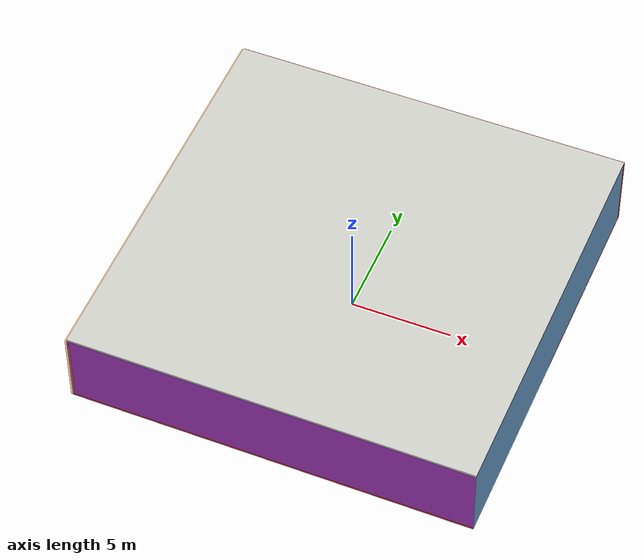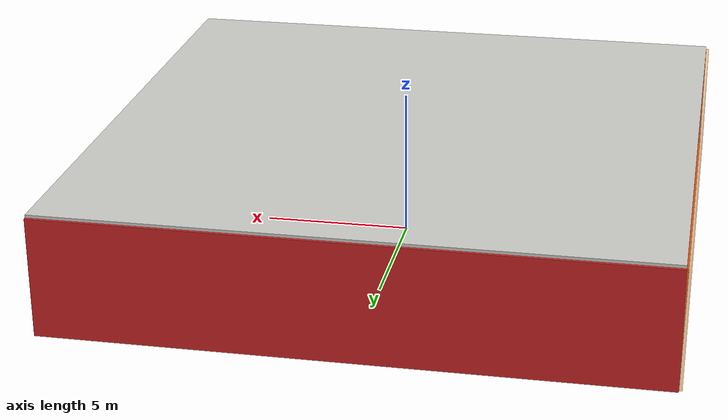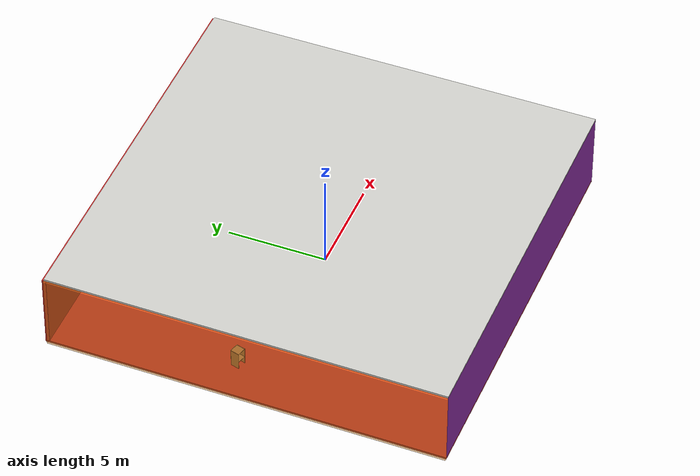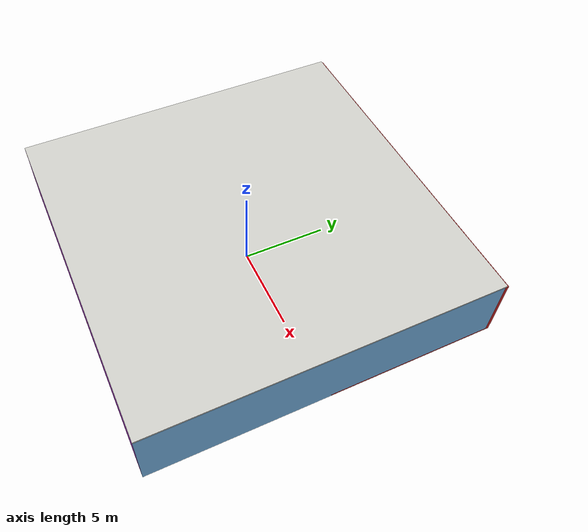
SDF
<sdf version="1.4">
 <world name="default">
  <physics type="ode">
   <max_step_size>0.001</max_step_size>
   <real_time_factor>1</real_time_factor>
   <real_time_update_rate>1000</real_time_update_rate>
   <gravity>0 0 -9.8</gravity>
  </physics>
  <scene><ambient>0.4 0.4 0.4 1</ambient><background>0.7 0.7 0.7 1</background><shadows>1</shadows></scene>
  <model name="Surrounding">
   <static>1</static>
   <link name="Ceiling">
    <collision name="Ceiling_Collision"><geometry><box><size>20 20 0.1</size></box></geometry></collision>
    <visual name="Ceiling_Visual">
     <geometry><box><size>20 20 0.1</size></box></geometry>
     <material>
      <script><uri>file://media/materials/scripts/gazebo.material</uri><name>Gazebo/CeilingTiled</name></script>
     </material>
    </visual>
    <pose>0 0 4.05 0 0 0</pose>
   </link>
   <link name="Wall_South">
    <collision name="Wall_South_Collision">
     <geometry><box><size>20 0 4</size></box></geometry>
     <pose>0 0 2 0 -0 0</pose>
    </collision>
    <visual name="Wall_South_Visual">
     <pose>0 0 2 0 -0 0</pose>
     <geometry><box><size>20 0 4</size></box></geometry>
     <material>
      <script><uri>file://media/materials/scripts/gazebo.material</uri><name>Gazebo/PurpleGlow</name></script>
     </material>
    </visual>
    <velocity_decay><linear>0</linear><angular>0</angular></velocity_decay>
    <pose>0 -10 0 0 -0 0</pose>
   </link>
   <link name="Wall_East">
    <collision name="Wall_21_Collision">
     <geometry><box><size>20 0 4</size></box></geometry>
     <pose>0 0 2 0 -0 0</pose>
    </collision>
    <visual name="Wall_21_Visual">
     <pose>0 0 2 0 -0 0</pose>
     <geometry><box><size>20 0 4</size></box></geometry>
     <material>
      <script><uri>file://media/materials/scripts/gazebo.material</uri><name>Gazebo/SkyBlue</name></script>
     </material>
    </visual>
    <velocity_decay><linear>0</linear><angular>0</angular></velocity_decay>
    <pose>10 0 0 0 -0 1.5708</pose>
   </link>
   <link name="Wall_North">
    <collision name="Wall_22_Collision">
     <geometry><box><size>20 0.2 4</size></box></geometry>
     <pose>0 0 2 0 -0 0</pose>
    </collision>
    <visual name="Wall_22_Visual">
     <pose>0 0 2 0 -0 0</pose>
     <geometry><box><size>20 0.2 4</size></box></geometry>
     <material>
      <script><uri>file://media/materials/scripts/gazebo.material</uri><name>Gazebo/RedBright</name></script>
     </material>
    </visual>
    <velocity_decay><linear>0</linear><angular>0</angular></velocity_decay>
    <pose>0 10 0 0 -0 0</pose>
   </link>
   <link name="Wall_West">
    <collision name="Wall_23_Collision">
     <geometry><box><size>20 0.2 4</size></box></geometry>
     <pose>0 0 2 0 -0 0</pose>
    </collision>
    <visual name="Wall_23_Visual">
     <pose>0 0 2 0 -0 0</pose>
     <geometry><box><size>20 0.2 4</size></box></geometry>
     <material>
      <script>
       <uri>file://media/materials/scripts/gazebo.material</uri>
       <name>Gazebo/OrangeTransparent</name>
      </script>
     </material>
    </visual>
    <velocity_decay><linear>0</linear><angular>0</angular></velocity_decay>
    <pose>-10 0 0 0 0 -1.5708</pose>
   </link>
   <link name="Ground_link">
    <collision name="collision">
     <pose>0 0 .05 0 -0 0</pose>
     <geometry><box><size>20 20 0.1</size></box></geometry>
    </collision>
    <visual name="visual">
     <pose>0 0 .05 0 -0 0</pose>
     <geometry><box><size>20 20 0.1</size></box></geometry>
     <material>
      <script><uri>file://media/materials/scripts/gazebo.material</uri><name>Gazebo/Red</name></script>
     </material>
    </visual>
   </link>
   <static>1</static>
  </model>
  <spherical_coordinates>
   <surface_model>EARTH_WGS84</surface_model>
   <latitude_deg>0</latitude_deg>
   <longitude_deg>0</longitude_deg>
   <elevation>0</elevation>
   <heading_deg>0</heading_deg>
  </spherical_coordinates>
  <light name="lightball_0" type="diffuse">
   <diffuse>0.8 0.8 0.8 1</diffuse>
   <specular>0.2 0.2 0.2 1</specular>
   <attenuation>
    <range>100</range>
    <constant>0.7</constant>
    <linear>0.01</linear>
    <quadratic>0.001</quadratic>
   </attenuation>
   <direction>-0.5 0.1 -0.9</direction>
   <pose>-6.70327141268 -5.51973914583 0.8684646295 0 0 0</pose>
  </light>
  <light name="lightball_1" type="diffuse">
   <diffuse>0.8 0.8 0.8 1</diffuse>
   <specular>0.2 0.2 0.2 1</specular>
   <attenuation>
    <range>100</range>
    <constant>0.7</constant>
    <linear>0.01</linear>
    <quadratic>0.001</quadratic>
   </attenuation>
   <direction>-0.5 0.1 -0.9</direction>
   <pose>-9.28149682405 1.00420799626 1.5785928847 0 0 0</pose>
  </light>
  <light name="lightball_2" type="diffuse">
   <diffuse>0.8 0.8 0.8 1</diffuse>
   <specular>0.2 0.2 0.2 1</specular>
   <attenuation>
    <range>100</range>
    <constant>0.7</constant>
    <linear>0.01</linear>
    <quadratic>0.001</quadratic>
   </attenuation>
   <direction>-0.5 0.1 -0.9</direction>
   <pose>5.2070341336 2.28105847818 1.40290405576 0 0 0</pose>
  </light>
  <light name="lightball_3" type="diffuse">
   <diffuse>0.8 0.8 0.8 1</diffuse>
   <specular>0.2 0.2 0.2 1</specular>
   <attenuation>
    <range>100</range>
    <constant>0.7</constant>
    <linear>0.01</linear>
    <quadratic>0.001</quadratic>
   </attenuation>
   <direction>-0.5 0.1 -0.9</direction>
   <pose>7.13137651703 -1.43648898995 3.82737902112 0 0 0</pose>
  </light>
  <include><uri>model://cabinet</uri><pose>-8.05172731138 1.12827717516 0 0 0 1.30716044546</pose></include>
  <include>
   <uri>model://construction_cone</uri>
   <pose>-4.71994539567 -6.71079011911 0 0 0 1.90900061466</pose>
  </include>
  <include>
   <uri>model://robocup_3Dsim_goal</uri>
   <pose>-4.12026048207 5.05714247319 0 0 0 0.73053564938</pose>
  </include>
  <include><uri>model://cabinet</uri><pose>-0.733692890076 -8.02710248497 0 0 0 2.46808528159</pose></include>
  <include><uri>model://table</uri><pose>-1.52424811838 -5.25159204673 0 0 0 0.724164743531</pose></include>
  <include><uri>model://cabinet</uri><pose>-1.30893890838 1.22527888162 0 0 0 1.40215407832</pose></include>
  <include><uri>model://cabinet</uri><pose>-1.43567109513 4.99364578941 0 0 0 0.564393352259</pose></include>
  <include><uri>model://cabinet</uri><pose>4.01839927616 -1.13587547446 0 0 0 1.62248125162</pose></include>
  <include>
   <uri>model://textured_shapes</uri>
   <pose>7.16594527906 1.75514951118 0 0 0 0.880611962189</pose>
  </include>
 </world>
</sdf>

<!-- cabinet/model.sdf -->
<sdf version="1.5">
  <model name="cabinet">
    <static>true</static>
    <link name="cabinet_bottom_plate">
      <inertial>
        <pose>0 0 -1 0 0 0</pose>
        <inertia>
          <ixx>2.050000</ixx>
          <ixy>0</ixy>
          <ixz>0</ixz>
          <iyy>2.050000</iyy>
          <iyz>0</iyz>
          <izz>2.050000</izz>
        </inertia>
        <mass>25.000000</mass>
      </inertial>
      <collision name="cabinet_bottom_plate_geom">
        <pose>0 0 0.010000 0 0 0</pose>
        <geometry>
          <box>
            <size>0.450000 0.450000 0.020000</size>
          </box>
        </geometry>
      </collision>
      <visual name="cabinet_bottom_plate_geom_visual">
        <pose>0 0 0.010000 0 0 0</pose>
        <geometry>
          <box>
            <size>0.450000 0.450000 0.020000</size>
          </box>
        </geometry>
        <material>
          <script>
            <uri>model://media/materials/scripts/gazebo.material</uri>
            <name>Gazebo/Wood</name>
          </script>
        </material>
      </visual>
      <collision name="cabinet_bottom_plate_geom_cabinet_back_plate">
        <pose>0.235000 0 0.510000 0 0 0</pose>
        <geometry>
          <box>
            <size>0.020000 0.450000 1.020000</size>
          </box>
        </geometry>
      </collision>
      <visual name="cabinet_bottom_plate_geom_cabinet_back_plate_visual">
        <pose>0.235000 0 0.510000 0 0 0</pose>
        <geometry>
          <box>
            <size>0.020000 0.450000 1.020000</size>
          </box>
        </geometry>
        <material>
          <script>
            <uri>model://media/materials/scripts/gazebo.material</uri>
            <name>Gazebo/Wood</name>
          </script>
        </material>
      </visual>
      <collision name="cabinet_bottom_plate_geom_cabinet_left_plate">
        <pose>0 0.235000 0.510000 0 0 0</pose>
        <geometry>
          <box>
            <size>0.450000 0.020000 1.020000</size>
          </box>
        </geometry>
      </collision>
      <visual name="cabinet_bottom_plate_geom_cabinet_left_plate_visual">
        <pose>0 0.235000 0.510000 0 0 0</pose>
        <geometry>
          <box>
            <size>0.450000 0.020000 1.020000</size>
          </box>
        </geometry>
        <material>
          <script>
            <uri>model://media/materials/scripts/gazebo.material</uri>
            <name>Gazebo/Wood</name>
          </script>
        </material>
      </visual>
      <collision name="cabinet_bottom_plate_geom_cabinet_middle_plate">
        <pose>0 0 0.510000 0 0 0</pose>
        <geometry>
          <box>
            <size>0.450000 0.450000 0.020000</size>
          </box>
        </geometry>
      </collision>
      <visual name="cabinet_bottom_plate_geom_cabinet_middle_plate_visual">
        <pose>0 0 0.510000 0 0 0</pose>
        <geometry>
          <box>
            <size>0.450000 0.450000 0.020000</size>
          </box>
        </geometry>
        <material>
          <script>
            <uri>model://media/materials/scripts/gazebo.material</uri>
            <name>Gazebo/Wood</name>
          </script>
        </material>
      </visual>
      <collision name="cabinet_bottom_plate_geom_cabinet_right_plate">
        <pose>0 -0.235000 0.510000 0 0 0</pose>
        <geometry>
          <box>
            <size>0.450000 0.020000 1.020000</size>
          </box>
        </geometry>
      </collision>
      <visual name="cabinet_bottom_plate_geom_cabinet_right_plate_visual">
        <pose>0 -0.235000 0.510000 0 0 0</pose>
        <geometry>
          <box>
            <size>0.450000 0.020000 1.020000</size>
          </box>
        </geometry>
        <material>
          <script>
            <uri>model://media/materials/scripts/gazebo.material</uri>
            <name>Gazebo/Wood</name>
          </script>
        </material>
      </visual>
      <collision name="cabinet_bottom_plate_geom_cabinet_top_plate">
        <pose>0 0 1.010000 0 0 0</pose>
        <geometry>
          <box>
            <size>0.450000 0.450000 0.020000</size>
          </box>
        </geometry>
      </collision>
      <visual name="cabinet_bottom_plate_geom_cabinet_top_plate_visual">
        <pose>0 0 1.010000 0 0 0</pose>
        <geometry>
          <box>
            <size>0.450000 0.450000 0.020000</size>
          </box>
        </geometry>
        <material>
          <script>
            <uri>model://media/materials/scripts/gazebo.material</uri>
            <name>Gazebo/Wood</name>
          </script>
        </material>
      </visual>
    </link>
  </model>
</sdf>

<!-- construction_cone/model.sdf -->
<sdf version="1.5">
  <model name="Construction Cone">
    <link name="link">
      <collision name="collision">
        <geometry>
          <mesh>
            <scale>10 10 10</scale>
            <uri>file://isr-testbed/construction_cone/meshes/construction_cone.dae</uri>
          </mesh>
        </geometry>
      </collision>
      <visual name="visual">
        <geometry>
          <mesh>
            <scale>10 10 10</scale>
            <uri>file://isr-testbed/construction_cone/meshes/construction_cone.dae</uri>
          </mesh>
        </geometry>
      </visual>
    </link>
  </model>
</sdf>

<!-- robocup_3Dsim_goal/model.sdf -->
<sdf version="1.5">
  <model name="robocup_3d_goal">
    <static>true</static>
    <link name="left_post">
      <pose>0 1.05 0.45 0 0 0</pose>
      <collision name="collision">
        <geometry>
          <cylinder>
            <radius>0.05</radius>
            <length>0.9</length>
          </cylinder>
        </geometry>
      </collision>
      <visual name="visual">
        <geometry>
          <cylinder>
            <radius>0.05</radius>
            <length>0.9</length>
          </cylinder>
        </geometry>
        <material>
          <script>
            <uri>file://media/materials/scripts/gazebo.material</uri>
            <name>Gazebo/ZincYellow</name>
          </script>
        </material>
      </visual>
    </link>
    <link name="left_support_horiz_lower">
      <pose>0.30 1.05 0.01 0 0 0</pose>
      <collision name="collision">
        <geometry>
          <box>
            <size>0.50 0.02 0.02</size>
          </box>
        </geometry>
      </collision>
      <visual name="visual">
        <geometry>
          <box>
            <size>0.50 0.02 0.02</size>
          </box>
        </geometry>
        <material>
          <script>
            <uri>file://media/materials/scripts/gazebo.material</uri>
            <name>Gazebo/White</name>
          </script>
        </material>
      </visual>
    </link>
    <link name="left_support_horiz_upper">
      <pose>0.30 1.05 0.79 0 0 0</pose>
      <collision name="collision">
        <geometry>
          <box>
            <size>0.50 0.02 0.02</size>
          </box>
        </geometry>
      </collision>
      <visual name="visual">
        <geometry>
          <box>
            <size>0.50 0.02 0.02</size>
          </box>
        </geometry>
        <material>
          <script>
            <uri>file://media/materials/scripts/gazebo.material</uri>
            <name>Gazebo/White</name>
          </script>
        </material>
      </visual>
    </link>
    <link name="left_support_vertical">
      <pose>0.56 1.05 0.4 0 1.5708 0</pose>
      <collision name="collision">
        <geometry>
          <box>
            <size>0.80 0.02 0.02</size>
          </box>
        </geometry>
      </collision>
      <visual name="visual">
        <geometry>
          <box>
            <size>0.80 0.02 0.02</size>
          </box>
        </geometry>
        <material>
          <script>
            <uri>file://media/materials/scripts/gazebo.material</uri>
            <name>Gazebo/White</name>
          </script>
        </material>
      </visual>
    </link>
    <link name="right_support_horiz_lower">
      <pose>0.30 -1.05 0.01 0 0 0</pose>
      <collision name="collision">
        <geometry>
          <box>
            <size>0.50 0.02 0.02</size>
          </box>
        </geometry>
      </collision>
      <visual name="visual">
        <geometry>
          <box>
            <size>0.50 0.02 0.02</size>
          </box>
        </geometry>
        <material>
          <script>
            <uri>file://media/materials/scripts/gazebo.material</uri>
            <name>Gazebo/White</name>
          </script>
        </material>
      </visual>
    </link>
    <link name="right_support_horiz_upper">
      <pose>0.30 -1.05 0.79 0 0 0</pose>
      <collision name="collision">
        <geometry>
          <box>
            <size>0.50 0.02 0.02</size>
          </box>
        </geometry>
      </collision>
      <visual name="visual">
        <geometry>
          <box>
            <size>0.50 0.02 0.02</size>
          </box>
        </geometry>
        <material>
          <script>
            <uri>file://media/materials/scripts/gazebo.material</uri>
            <name>Gazebo/White</name>
          </script>
        </material>
      </visual>
    </link>
    <link name="right_support_vertical">
      <pose>0.56 -1.05 0.4 0 1.5708 0</pose>
      <collision name="collision">
        <geometry>
          <box>
            <size>0.80 0.02 0.02</size>
          </box>
        </geometry>
      </collision>
      <visual name="visual">
        <geometry>
          <box>
            <size>0.80 0.02 0.02</size>
          </box>
        </geometry>
        <material>
          <script>
            <uri>file://media/materials/scripts/gazebo.material</uri>
            <name>Gazebo/White</name>
          </script>
        </material>
      </visual>
    </link>
    <link name="center_support_horiz_lower">
      <pose>0.56 0 0.01 0 1.5708 0</pose>
      <collision name="collision">
        <geometry>
          <box>
            <size>0.02 2.08 0.02</size>
          </box>
        </geometry>
      </collision>
      <visual name="visual">
        <geometry>
          <box>
            <size>0.02 2.08 0.02</size>
          </box>
        </geometry>
        <material>
          <script>
            <uri>file://media/materials/scripts/gazebo.material</uri>
            <name>Gazebo/White</name>
          </script>
        </material>
      </visual>
    </link>
    <link name="center_support_horiz_upper">
      <pose>0.56 0 0.79 0 1.5708 0</pose>
      <collision name="collision">
        <geometry>
          <box>
            <size>0.02 2.08 0.02</size>
          </box>
        </geometry>
      </collision>
      <visual name="visual">
        <geometry>
          <box>
            <size>0.02 2.08 0.02</size>
          </box>
        </geometry>
        <material>
          <script>
            <uri>file://media/materials/scripts/gazebo.material</uri>
            <name>Gazebo/White</name>
          </script>
        </material>
      </visual>
    </link>
    <link name="right_post">
      <pose>0 -1.05 0.45 0 0 0</pose>
      <collision name="collision">
        <geometry>
          <cylinder>
            <radius>0.05</radius>
            <length>0.9</length>
          </cylinder>
        </geometry>
      </collision>
      <visual name="visual">
        <geometry>
          <cylinder>
            <radius>0.05</radius>
            <length>0.9</length>
          </cylinder>
        </geometry>
        <material>
          <script>
            <uri>file://media/materials/scripts/gazebo.material</uri>
            <name>Gazebo/ZincYellow</name>
          </script>
        </material>
      </visual>
    </link>
    <link name="crossbar">
      <pose>0 0 0.85 1.57 1.57 0</pose>
      <collision name="collision">
        <geometry>
          <cylinder>
            <radius>0.05</radius>
            <length>2.0</length>
          </cylinder>
        </geometry>
      </collision>
      <visual name="visual">
        <geometry>
          <cylinder>
            <radius>0.05</radius>
            <length>2.0</length>
          </cylinder>
        </geometry>
        <material>
          <script>
            <uri>file://media/materials/scripts/gazebo.material</uri>
            <name>Gazebo/ZincYellow</name>
          </script>
        </material>
      </visual>
    </link>
    <link name="center_net">
      <pose>0.56 0 0.40 0 0 0</pose>
      <collision name="collision">
        <geometry>
          <box>
            <size>0.01 2.1 0.80</size>
          </box>
        </geometry>
      </collision>
      <visual name="visual">
        <geometry>
          <box>
            <size>0.01 2.1 0.80</size>
          </box>
        </geometry>
        <material>
          <script>
            <uri>model://../model_source/models/robocup09_spl_field/materials/scripts/</uri>
            <uri>model://../model_source/models/robocup09_spl_field/materials/textures/</uri>
            <name>RoboCup/Net</name>
          </script>
        </material>
      </visual>
    </link>
    <link name="left_net">
      <pose>0.30 1.05 0.40 0 0 0</pose>
      <collision name="collision">
        <geometry>
          <box>
            <size>0.50 0.01 0.76</size>
          </box>
        </geometry>
      </collision>
      <visual name="visual">
        <geometry>
          <box>
            <size>0.50 0.01 0.76</size>
          </box>
        </geometry>
        <material>
          <script>
            <uri>model://../model_source/models/robocup09_spl_field/materials/scripts/</uri>
            <uri>model://../model_source/models/robocup09_spl_field/materials/textures/</uri>
            <name>RoboCup/Net</name>
          </script>
        </material>
      </visual>
    </link>
    <link name="right_net">
      <pose>0.30 -1.05 0.40 0 0 0</pose>
      <collision name="collision">
        <geometry>
          <box>
            <size>0.50 0.01 0.76</size>
          </box>
        </geometry>
      </collision>
      <visual name="visual">
        <geometry>
          <box>
            <size>0.50 0.01 0.76</size>
          </box>
        </geometry>
        <material>
          <script>
            <uri>model://../model_source/models/robocup09_spl_field/materials/scripts/</uri>
            <uri>model://../model_source/models/robocup09_spl_field/materials/textures/</uri>
            <name>RoboCup/Net</name>
          </script>
        </material>
      </visual>
    </link>
  </model>
</sdf>

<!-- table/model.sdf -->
<sdf version="1.5">
  <model name="table">
    <static>true</static>
    <link name="link">
      <collision name="surface">
        <pose>0 0 1.0 0 0 0</pose>
        <geometry>
          <box>
            <size>1.5 0.8 0.03</size>
          </box>
        </geometry>
        <surface>
          <friction>
            <ode>
              <mu>0.6</mu>
              <mu2>0.6</mu2>
            </ode>
          </friction>
        </surface>
      </collision>
      <visual name="visual1">
        <pose>0 0 1.0 0 0 0</pose>
        <geometry>
          <box>
            <size>1.5 0.8 0.03</size>
          </box>
        </geometry>
        <material>
          <script>
            <uri>model://media/materials/scripts/gazebo.material</uri>
            <name>Gazebo/Wood</name>
          </script>
        </material>
      </visual>
      <collision name="front_left_leg">
        <pose>0.68 0.38 0.5 0 0 0</pose>
        <geometry>
          <cylinder>
            <radius>0.02</radius>
            <length>1.0</length>
          </cylinder>
        </geometry>
      </collision>
      <visual name="front_left_leg">
        <pose>0.68 0.38 0.5 0 0 0</pose>
        <geometry>
          <cylinder>
            <radius>0.02</radius>
            <length>1.0</length>
          </cylinder>
        </geometry>
        <material>
          <script>
            <uri>model://media/materials/scripts/gazebo.material</uri>
            <name>Gazebo/Grey</name>
          </script>
        </material>
      </visual>
      <collision name="front_right_leg">
        <pose>0.68 -0.38 0.5 0 0 0</pose>
        <geometry>
          <cylinder>
            <radius>0.02</radius>
            <length>1.0</length>
          </cylinder>
        </geometry>
      </collision>
      <visual name="front_right_leg">
        <pose>0.68 -0.38 0.5 0 0 0</pose>
        <geometry>
          <cylinder>
            <radius>0.02</radius>
            <length>1.0</length>
          </cylinder>
        </geometry>
        <material>
          <script>
            <uri>model://media/materials/scripts/gazebo.material</uri>
            <name>Gazebo/Grey</name>
          </script>
        </material>
      </visual>
      <collision name="back_right_leg">
        <pose>-0.68 -0.38 0.5 0 0 0</pose>
        <geometry>
          <cylinder>
            <radius>0.02</radius>
            <length>1.0</length>
          </cylinder>
        </geometry>
      </collision>
      <visual name="back_right_leg">
        <pose>-0.68 -0.38 0.5 0 0 0</pose>
        <geometry>
          <cylinder>
            <radius>0.02</radius>
            <length>1.0</length>
          </cylinder>
        </geometry>
        <material>
          <script>
            <uri>model://media/materials/scripts/gazebo.material</uri>
            <name>Gazebo/Grey</name>
          </script>
        </material>
      </visual>
      <collision name="back_left_leg">
        <pose>-0.68 0.38 0.5 0 0 0</pose>
        <geometry>
          <cylinder>
            <radius>0.02</radius>
            <length>1.0</length>
          </cylinder>
        </geometry>
      </collision>
      <visual name="back_left_leg">
        <pose>-0.68 0.38 0.5 0 0 0</pose>
        <geometry>
          <cylinder>
            <radius>0.02</radius>
            <length>1.0</length>
          </cylinder>
        </geometry>
        <material>
          <script>
            <uri>model://media/materials/scripts/gazebo.material</uri>
            <name>Gazebo/Grey</name>
          </script>
        </material>
      </visual>
    </link>
  </model>
</sdf>

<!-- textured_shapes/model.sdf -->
<sdf version="1.6">
  <model name="textured_shapes">
    <pose>0 0 0.5 0 0 0</pose>
    <link name="box">
      <pose>0 -1.5 0 0 0 0</pose>
      <collision name="collision">
        <geometry>
          <box>
            <size>1 1 1</size>
          </box>
        </geometry>
      </collision>
      <visual name="visual">
        <geometry>
          <box>
            <size>1 1 1</size>
          </box>
        </geometry>
        <material>
          <script>
            <uri>model://../model_source/models/textured_shapes/materials/scripts</uri>
            <uri>model://../model_source/models/textured_shapes/materials/textures</uri>
            <name>TexturedShape/Squares</name>
          </script>
        </material>
      </visual>
    </link>
    <link name="sphere">
      <collision name="collision">
        <geometry>
          <sphere>
            <radius>0.5</radius>
          </sphere>
        </geometry>
      </collision>
      <visual name="visual">
        <geometry>
          <sphere>
            <radius>0.5</radius>
          </sphere>
        </geometry>
        <material>
          <script>
            <uri>model://../model_source/models/textured_shapes/materials/scripts</uri>
            <uri>model://../model_source/models/textured_shapes/materials/textures</uri>
            <name>TexturedShape/Squares</name>
          </script>
        </material>
      </visual>
    </link>
    <link name="cylinder">
      <pose>0 1.5 0 0 0 0</pose>
      <collision name="collision">
        <geometry>
          <cylinder>
            <radius>0.5</radius>
            <length>1</length>
          </cylinder>
        </geometry>
      </collision>
      <visual name="visual">
        <geometry>
          <cylinder>
            <radius>0.5</radius>
            <length>1</length>
          </cylinder>
        </geometry>
        <material>
          <script>
            <uri>model://../model_source/models/textured_shapes/materials/scripts</uri>
            <uri>model://../model_source/models/textured_shapes/materials/textures</uri>
            <name>TexturedShape/Squares</name>
          </script>
        </material>
      </visual>
    </link>
  </model>
</sdf>
